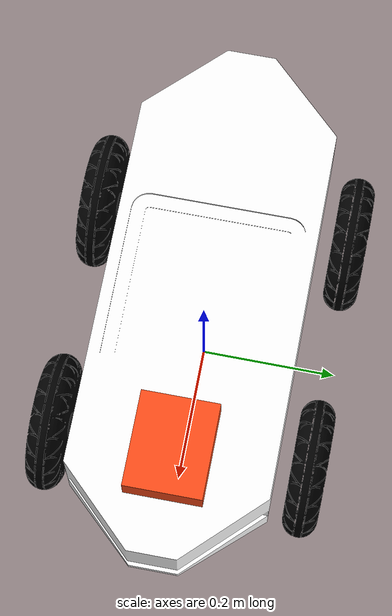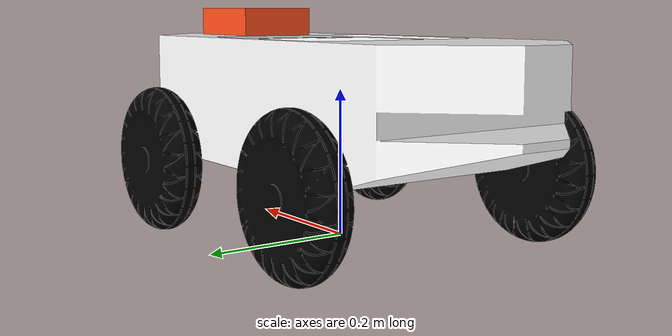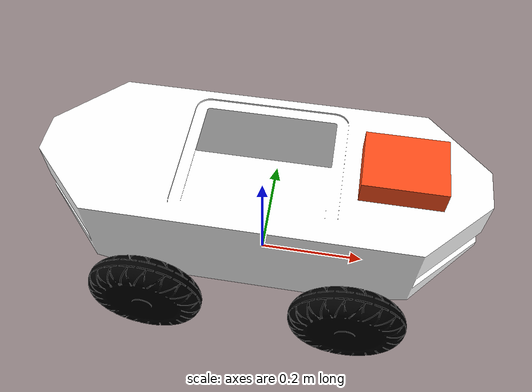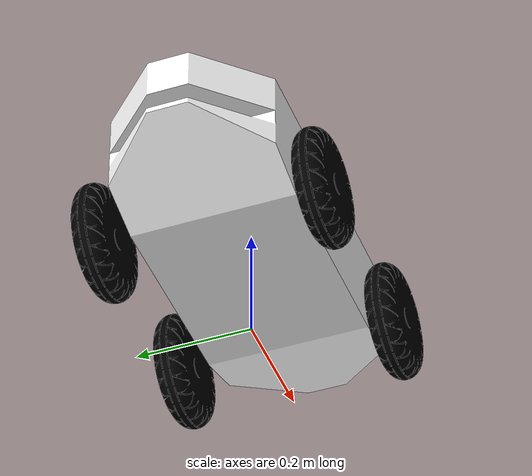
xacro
<?xml version="1.0" ?>
<robot name="robot_rover" xmlns:xacro="http://ros.org/wiki/xacro">
  <xacro:include filename="$(find description2)/urdf/materials.xacro"/>
  <xacro:include filename="$(find description2)/urdf/robot_rover.gazebo.xacro"/>

  <link name="base_footprint"/>

  <joint name="main_joint" type="fixed">
    <parent link = "base_footprint"/>
    <child link = "base_link"/>
    <origin xyz ="0 0 0.10" rpy="0 0 0"/>
  </joint>

  <link name = "base_link">
    <visual>
      <origin xyz= "0 0 0.085"/>
      <geometry>
        <mesh filename= "package://description2/meshes/Chassis.stl" scale="0.001 0.001 0.001"/>
      </geometry>
      <material name ="white"/>
    </visual>
    <collision>
      <origin xyz= "0 0 0.085"/>
      <geometry>
          <box size = "0.69804 0.325 0.17 "/>
      </geometry>
    </collision>
    <inertial>
      <mass value="19.928" />
      <origin xyz="0 0 0" />
      <inertia ixx="0.286" ixy="0.0" ixz="0.0"
          iyy="1.109" iyz="0.0"
          izz="1.227" />
    </inertial>
  </link>

  <joint name="left_wheel_front_joint" type="continuous">
    <parent link="base_link"/>
    <child link="left_wheel_front_link"/>
    <origin xyz="0.175 0.1875 0"/>
    <axis xyz="0 1 0"/>
  </joint>

  <link name="left_wheel_front_link">
    <visual>
      <geometry>
        <mesh filename="package://description2/meshes/wheels.stl" scale="0.001 0.001 0.001"/>
      </geometry>
      <material name="black"/>
    </visual>
    <collision>
      <origin xyz="0 0 0" rpy="-${pi/2} 0 0"/>
      <geometry>
        <cylinder radius="0.1" length="0.05"/>
      </geometry>
    </collision>
    <inertial>
      <mass value="1.420"/>
      <origin xyz="0 0 0"/>
      <inertia ixx="0.004" ixy="0.0" ixz="0.0"
                iyy="0.008" iyz="0.0"
                izz="0.004" />
    </inertial>
  </link>

  <joint name="left_wheel_back_joint" type="continuous">
    <parent link="base_link"/>
    <child link="left_wheel_back_link"/>
    <origin xyz="-0.175 0.1875 0"/>
    <axis xyz="0 1 0"/>
  </joint>

  <link name="left_wheel_back_link">
    <visual>
      <geometry>
        <mesh filename="package://description2/meshes/wheels.stl" scale="0.001 0.001 0.001"/>
      </geometry>
      <material name="black"/>
    </visual>
    <collision>
      <origin xyz="0 0 0" rpy="-${pi/2} 0 0"/>
      <geometry>
        <cylinder radius="0.1" length="0.05"/>
      </geometry>
    </collision>
    <inertial>
      <mass value="1.420"/>
      <origin xyz="0 0 0"/>
      <inertia ixx="0.004" ixy="0.0" ixz="0.0"
                iyy="0.008" iyz="0.0"
                izz="0.004" />
    </inertial>
  </link>

  <joint name="right_wheel_front_joint" type="continuous">
    <parent link="base_link"/>
    <child link="right_wheel_front_link"/>
    <origin xyz="0.175 -0.1875 0"/>
    <axis xyz="0 1 0"/>
  </joint>

  <link name="right_wheel_front_link">
    <visual>
      <geometry>
        <mesh filename="package://description2/meshes/wheels.stl" scale="0.001 0.001 0.001"/>
      </geometry>
      <material name="black"/>
    </visual>
    <collision>
      <origin xyz="0 0 0" rpy="${pi/2} 0 0"/>
      <geometry>
        <cylinder radius="0.1" length="0.05"/>
      </geometry>
    </collision>
    <inertial>
      <mass value="1.420"/>
      <origin xyz="0 0 0"/>
      <inertia ixx="0.004" ixy="0.0" ixz="0.0"
                iyy="0.008" iyz="0.0"
                izz="0.004" />
    </inertial>
  </link>

  <joint name="right_wheel_back_joint" type="continuous">
    <parent link="base_link"/>
    <child link="right_wheel_back_link"/>
    <origin xyz="-0.175 -0.1875 0"/>
    <axis xyz="0 1 0"/>
  </joint>

  <link name="right_wheel_back_link">
    <visual>
      <geometry>
        <mesh filename="package://description2/meshes/wheels.stl" scale="0.001 0.001 0.001"/>
      </geometry>
      <material name="black"/>
    </visual>
    <collision>
      <origin xyz="0 0 0" rpy="${pi/2} 0 0"/>
      <geometry>
        <cylinder radius="0.1" length="0.05"/>
      </geometry>
    </collision>
    <inertial>
      <mass value="1.420"/>
      <origin xyz="0 0 0"/>
      <inertia ixx="0.004" ixy="0.0" ixz="0.0"
                iyy="0.008" iyz="0.0"
                izz="0.004" />
    </inertial>
  </link>

  <joint name="fixed" type="fixed">
    <parent link="base_link"/>
    <child link="sensor"/>
    <origin xyz = "0.23 0 0.17"/>
  </joint>

  <link name="sensor">
    <visual>
      <origin xyz="0 0 0.02" rpy="0 0 0"/>
      <geometry>
        <box size="0.135 0.11 0.04"/>
      </geometry>
      <material name="orange"/>
    </visual>

    <collision>
      <origin xyz="0 0 0.02" rpy="0 0 0"/>
      <geometry>
        <box size="0.135 0.11 0.04"/>
      </geometry>
    </collision>

    <inertial>
      <origin xyz="0 0 0.02" rpy="0 0 0"/>
      <mass value="1"/>
      <inertia
        ixx="1.0" ixy="0.0" ixz="0.0"
        iyy="1.0" iyz="0.0"
        izz="1.0"/>
    </inertial>
  </link>

</robot>

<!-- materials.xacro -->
<robot xmlns:xacro="http://www.ros.org/wiki/xacro">
  <material name="white">
    <color rgba="1 1 1 1"/>
  </material>

  <material name="orange">
    <color rgba="1 0.3 0.1 1"/>
  </material>

  <material name="blue">
    <color rgba="0.2 0.2 1 1"/>
  </material>

  <material name="black">
    <color rgba="0 0 0 1"/>
  </material>
</robot>
